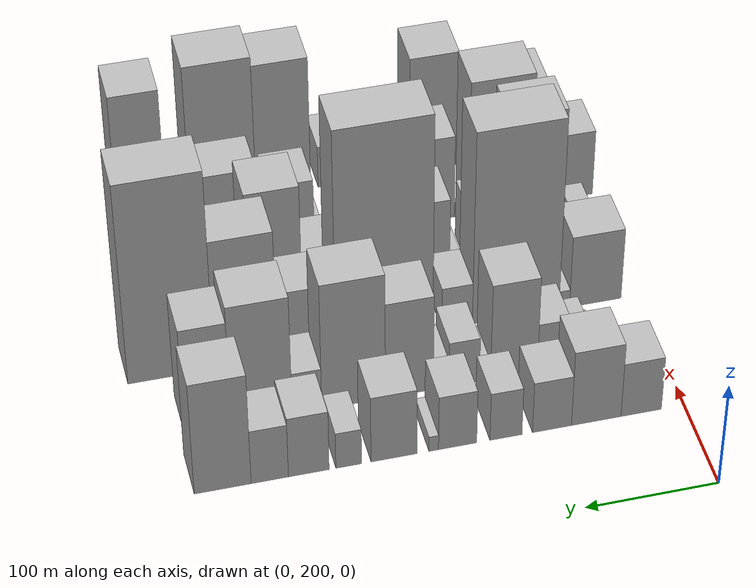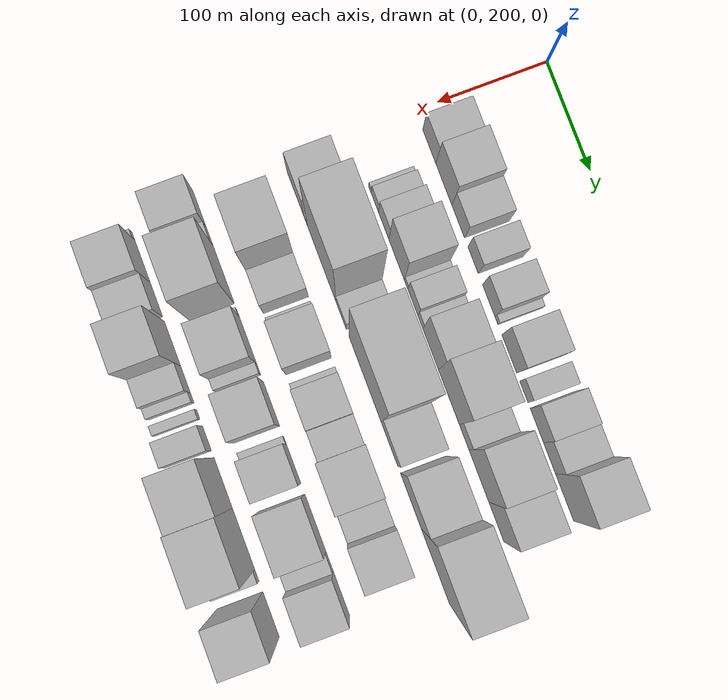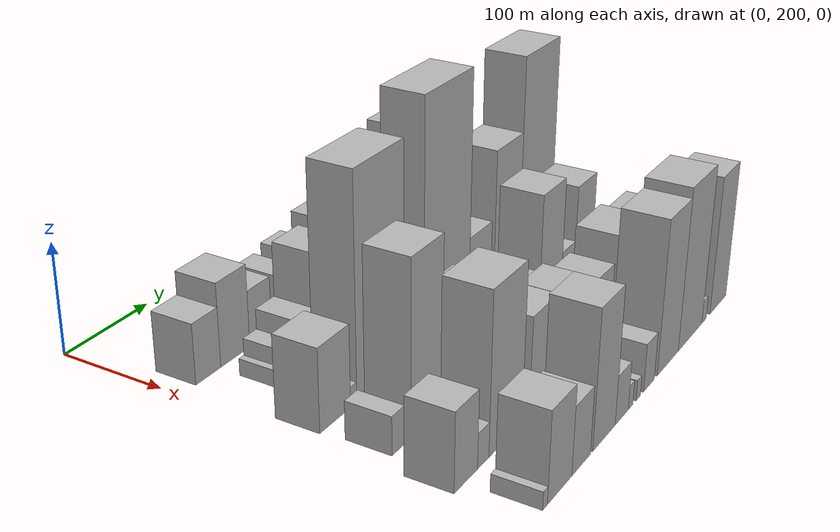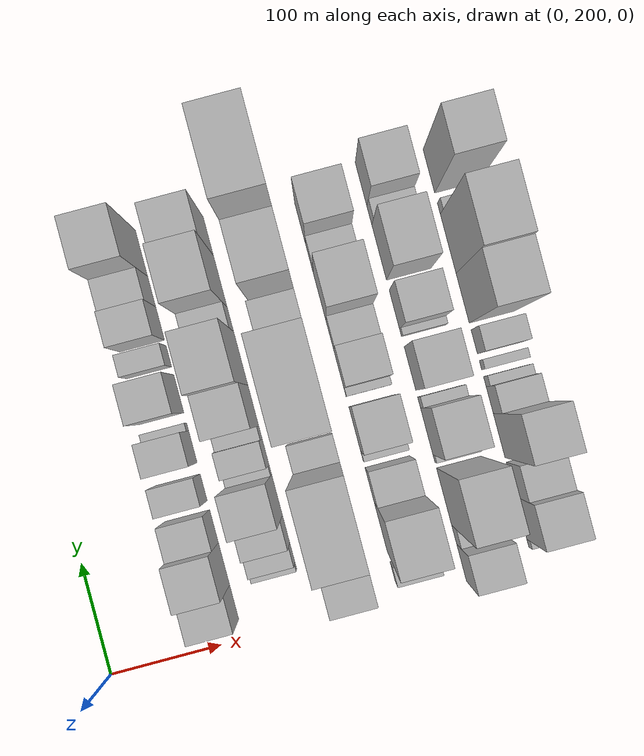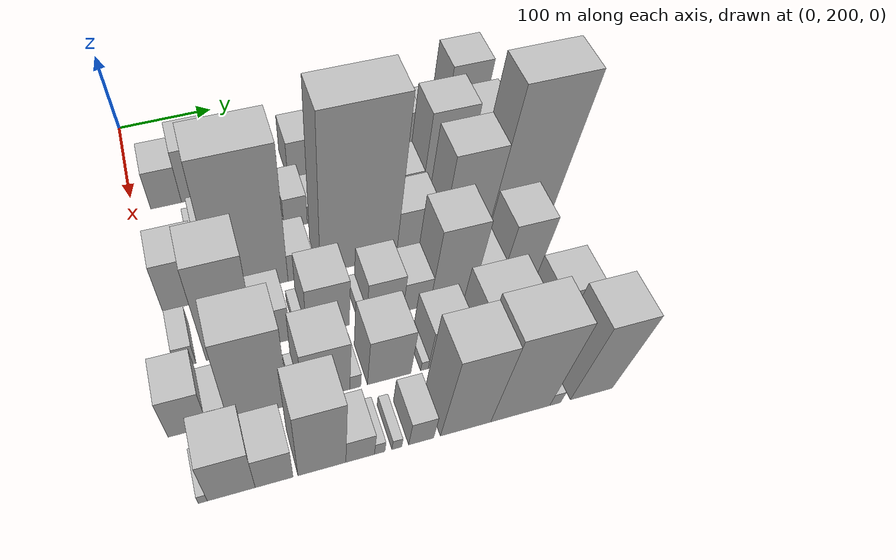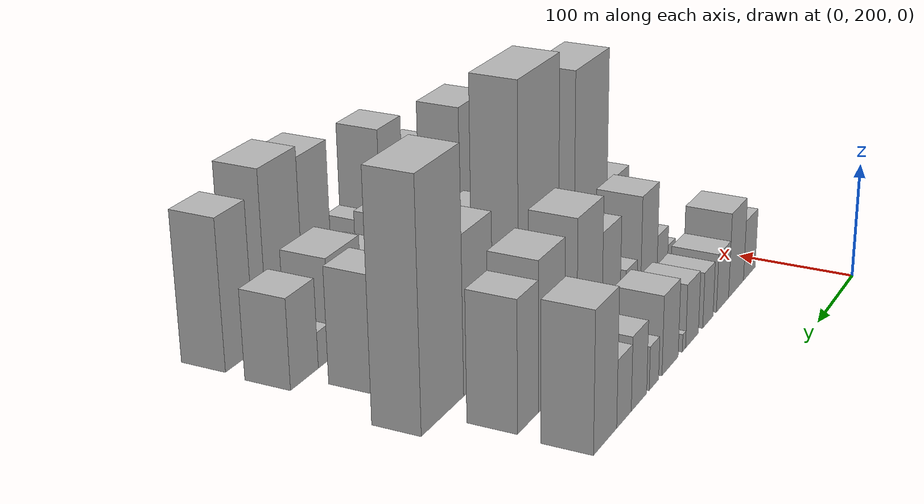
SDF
<sdf version="1.6">
 <world name="default">
  <model name="building_34">
   <static>1</static>
   <pose>100.0000 233.3435 0 0.000000 0.000000 0.000000</pose>
   <link name="link">
    <pose>0 0 27.00 0 0 0</pose>
    <collision name="collision"><geometry><box><size>40.0000 31.0920 54.0000</size></box></geometry></collision>
    <visual name="visual">
     <cast_shadows>0</cast_shadows>
     <geometry><box><size>40.0000 31.0920 54.0000</size></box></geometry>
     <material>
      <script>
       <uri>model://HANNAS_wall/materials/scripts</uri>
       <uri>model://HANNAS_wall/materials/textures</uri>
       <name>vrc/HANNAS_wall</name>
      </script>
     </material>
    </visual>
   </link>
  </model>
  <model name="building_35">
   <static>1</static>
   <pose>100.0000 267.8716 0 0.000000 0.000000 0.000000</pose>
   <link name="link">
    <pose>0 0 37.50 0 0 0</pose>
    <collision name="collision"><geometry><box><size>40.0000 37.9643 75.0000</size></box></geometry></collision>
    <visual name="visual">
     <cast_shadows>0</cast_shadows>
     <geometry><box><size>40.0000 37.9643 75.0000</size></box></geometry>
     <material>
      <script>
       <uri>model://HANNAS_wall/materials/scripts</uri>
       <uri>model://HANNAS_wall/materials/textures</uri>
       <name>vrc/HANNAS_wall</name>
      </script>
     </material>
    </visual>
   </link>
  </model>
  <model name="building_36">
   <static>1</static>
   <pose>100.0000 301.6998 0 0.000000 0.000000 0.000000</pose>
   <link name="link">
    <pose>0 0 25.50 0 0 0</pose>
    <collision name="collision"><geometry><box><size>40.0000 29.6921 51.0000</size></box></geometry></collision>
    <visual name="visual">
     <cast_shadows>0</cast_shadows>
     <geometry><box><size>40.0000 29.6921 51.0000</size></box></geometry>
     <material>
      <script>
       <uri>model://HANNAS_wall/materials/scripts</uri>
       <uri>model://HANNAS_wall/materials/textures</uri>
       <name>vrc/HANNAS_wall</name>
      </script>
     </material>
    </visual>
   </link>
  </model>
  <model name="building_37">
   <static>1</static>
   <pose>100.0000 336.6828 0 0.000000 0.000000 0.000000</pose>
   <link name="link">
    <pose>0 0 24.00 0 0 0</pose>
    <collision name="collision"><geometry><box><size>40.0000 24.2740 48.0000</size></box></geometry></collision>
    <visual name="visual">
     <cast_shadows>0</cast_shadows>
     <geometry><box><size>40.0000 24.2740 48.0000</size></box></geometry>
     <material>
      <script>
       <uri>model://HANNAS_wall/materials/scripts</uri>
       <uri>model://HANNAS_wall/materials/textures</uri>
       <name>vrc/HANNAS_wall</name>
      </script>
     </material>
    </visual>
   </link>
  </model>
  <model name="building_38">
   <static>1</static>
   <pose>100.0000 373.2218 0 0.000000 0.000000 0.000000</pose>
   <link name="link">
    <pose>0 0 27.00 0 0 0</pose>
    <collision name="collision"><geometry><box><size>40.0000 28.8039 54.0000</size></box></geometry></collision>
    <visual name="visual">
     <cast_shadows>0</cast_shadows>
     <geometry><box><size>40.0000 28.8039 54.0000</size></box></geometry>
     <material>
      <script>
       <uri>model://HANNAS_wall/materials/scripts</uri>
       <uri>model://HANNAS_wall/materials/textures</uri>
       <name>vrc/HANNAS_wall</name>
      </script>
     </material>
    </visual>
   </link>
  </model>
  <model name="building_39">
   <static>1</static>
   <pose>100.0000 391.2002 0 0.000000 0.000000 0.000000</pose>
   <link name="link">
    <pose>0 0 7.50 0 0 0</pose>
    <collision name="collision"><geometry><box><size>40.0000 7.1529 15.0000</size></box></geometry></collision>
    <visual name="visual">
     <cast_shadows>0</cast_shadows>
     <geometry><box><size>40.0000 7.1529 15.0000</size></box></geometry>
     <material>
      <script>
       <uri>model://HANNAS_wall/materials/scripts</uri>
       <uri>model://HANNAS_wall/materials/textures</uri>
       <name>vrc/HANNAS_wall</name>
      </script>
     </material>
    </visual>
   </link>
  </model>
  <model name="building_40">
   <static>1</static>
   <pose>100.0000 420.9449 0 0.000000 0.000000 0.000000</pose>
   <link name="link">
    <pose>0 0 33.00 0 0 0</pose>
    <collision name="collision"><geometry><box><size>40.0000 34.3366 66.0000</size></box></geometry></collision>
    <visual name="visual">
     <cast_shadows>0</cast_shadows>
     <geometry><box><size>40.0000 34.3366 66.0000</size></box></geometry>
     <material>
      <script>
       <uri>model://HANNAS_wall/materials/scripts</uri>
       <uri>model://HANNAS_wall/materials/textures</uri>
       <name>vrc/HANNAS_wall</name>
      </script>
     </material>
    </visual>
   </link>
  </model>
  <model name="building_41">
   <static>1</static>
   <pose>100.0000 454.6566 0 0.000000 0.000000 0.000000</pose>
   <link name="link">
    <pose>0 0 18.00 0 0 0</pose>
    <collision name="collision"><geometry><box><size>40.0000 19.0866 36.0000</size></box></geometry></collision>
    <visual name="visual">
     <cast_shadows>0</cast_shadows>
     <geometry><box><size>40.0000 19.0866 36.0000</size></box></geometry>
     <material>
      <script>
       <uri>model://HANNAS_wall/materials/scripts</uri>
       <uri>model://HANNAS_wall/materials/textures</uri>
       <name>vrc/HANNAS_wall</name>
      </script>
     </material>
    </visual>
   </link>
  </model>
  <model name="building_42">
   <static>1</static>
   <pose>100.0000 484.2543 0 0.000000 0.000000 0.000000</pose>
   <link name="link">
    <pose>0 0 30.00 0 0 0</pose>
    <collision name="collision"><geometry><box><size>40.0000 30.1088 60.0000</size></box></geometry></collision>
    <visual name="visual">
     <cast_shadows>0</cast_shadows>
     <geometry><box><size>40.0000 30.1088 60.0000</size></box></geometry>
     <material>
      <script>
       <uri>model://HANNAS_wall/materials/scripts</uri>
       <uri>model://HANNAS_wall/materials/textures</uri>
       <name>vrc/HANNAS_wall</name>
      </script>
     </material>
    </visual>
   </link>
  </model>
  <model name="building_43">
   <static>1</static>
   <pose>100.0000 513.0404 0 0.000000 0.000000 0.000000</pose>
   <link name="link">
    <pose>0 0 27.00 0 0 0</pose>
    <collision name="collision"><geometry><box><size>40.0000 27.4634 54.0000</size></box></geometry></collision>
    <visual name="visual">
     <cast_shadows>0</cast_shadows>
     <geometry><box><size>40.0000 27.4634 54.0000</size></box></geometry>
     <material>
      <script>
       <uri>model://HANNAS_wall/materials/scripts</uri>
       <uri>model://HANNAS_wall/materials/textures</uri>
       <name>vrc/HANNAS_wall</name>
      </script>
     </material>
    </visual>
   </link>
  </model>
  <model name="building_44">
   <static>1</static>
   <pose>100.0000 547.6050 0 0.000000 0.000000 0.000000</pose>
   <link name="link">
    <pose>0 0 55.50 0 0 0</pose>
    <collision name="collision"><geometry><box><size>40.0000 41.6658 111.0000</size></box></geometry></collision>
    <visual name="visual">
     <cast_shadows>0</cast_shadows>
     <geometry><box><size>40.0000 41.6658 111.0000</size></box></geometry>
     <material>
      <script>
       <uri>model://HANNAS_wall/materials/scripts</uri>
       <uri>model://HANNAS_wall/materials/textures</uri>
       <name>vrc/HANNAS_wall</name>
      </script>
     </material>
    </visual>
   </link>
  </model>
  <model name="building_88">
   <static>1</static>
   <pose>160.0000 250.4809 0 0.000000 0.000000 0.000000</pose>
   <link name="link">
    <pose>0 0 7.50 0 0 0</pose>
    <collision name="collision"><geometry><box><size>40.0000 6.4826 15.0000</size></box></geometry></collision>
    <visual name="visual">
     <cast_shadows>0</cast_shadows>
     <geometry><box><size>40.0000 6.4826 15.0000</size></box></geometry>
     <material>
      <script>
       <uri>model://HANNAS_wall/materials/scripts</uri>
       <uri>model://HANNAS_wall/materials/textures</uri>
       <name>vrc/HANNAS_wall</name>
      </script>
     </material>
    </visual>
   </link>
  </model>
  <model name="building_89">
   <static>1</static>
   <pose>160.0000 262.4297 0 0.000000 0.000000 0.000000</pose>
   <link name="link">
    <pose>0 0 15.00 0 0 0</pose>
    <collision name="collision"><geometry><box><size>40.0000 17.4149 30.0000</size></box></geometry></collision>
    <visual name="visual">
     <cast_shadows>0</cast_shadows>
     <geometry><box><size>40.0000 17.4149 30.0000</size></box></geometry>
     <material>
      <script>
       <uri>model://HANNAS_wall/materials/scripts</uri>
       <uri>model://HANNAS_wall/materials/textures</uri>
       <name>vrc/HANNAS_wall</name>
      </script>
     </material>
    </visual>
   </link>
  </model>
  <model name="building_90">
   <static>1</static>
   <pose>160.0000 283.4518 0 0.000000 0.000000 0.000000</pose>
   <link name="link">
    <pose>0 0 24.00 0 0 0</pose>
    <collision name="collision"><geometry><box><size>40.0000 24.6294 48.0000</size></box></geometry></collision>
    <visual name="visual">
     <cast_shadows>0</cast_shadows>
     <geometry><box><size>40.0000 24.6294 48.0000</size></box></geometry>
     <material>
      <script>
       <uri>model://HANNAS_wall/materials/scripts</uri>
       <uri>model://HANNAS_wall/materials/textures</uri>
       <name>vrc/HANNAS_wall</name>
      </script>
     </material>
    </visual>
   </link>
  </model>
  <model name="building_91">
   <static>1</static>
   <pose>160.0000 313.9219 0 0.000000 0.000000 0.000000</pose>
   <link name="link">
    <pose>0 0 48.00 0 0 0</pose>
    <collision name="collision"><geometry><box><size>40.0000 36.3106 96.0000</size></box></geometry></collision>
    <visual name="visual">
     <cast_shadows>0</cast_shadows>
     <geometry><box><size>40.0000 36.3106 96.0000</size></box></geometry>
     <material>
      <script>
       <uri>model://HANNAS_wall/materials/scripts</uri>
       <uri>model://HANNAS_wall/materials/textures</uri>
       <name>vrc/HANNAS_wall</name>
      </script>
     </material>
    </visual>
   </link>
  </model>
  <model name="building_92">
   <static>1</static>
   <pose>160.0000 336.3465 0 0.000000 0.000000 0.000000</pose>
   <link name="link">
    <pose>0 0 9.00 0 0 0</pose>
    <collision name="collision"><geometry><box><size>40.0000 8.5387 18.0000</size></box></geometry></collision>
    <visual name="visual">
     <cast_shadows>0</cast_shadows>
     <geometry><box><size>40.0000 8.5387 18.0000</size></box></geometry>
     <material>
      <script>
       <uri>model://HANNAS_wall/materials/scripts</uri>
       <uri>model://HANNAS_wall/materials/textures</uri>
       <name>vrc/HANNAS_wall</name>
      </script>
     </material>
    </visual>
   </link>
  </model>
  <model name="building_93">
   <static>1</static>
   <pose>160.0000 352.3529 0 0.000000 0.000000 0.000000</pose>
   <link name="link">
    <pose>0 0 22.50 0 0 0</pose>
    <collision name="collision"><geometry><box><size>40.0000 23.4741 45.0000</size></box></geometry></collision>
    <visual name="visual">
     <cast_shadows>0</cast_shadows>
     <geometry><box><size>40.0000 23.4741 45.0000</size></box></geometry>
     <material>
      <script>
       <uri>model://HANNAS_wall/materials/scripts</uri>
       <uri>model://HANNAS_wall/materials/textures</uri>
       <name>vrc/HANNAS_wall</name>
      </script>
     </material>
    </visual>
   </link>
  </model>
  <model name="building_94">
   <static>1</static>
   <pose>160.0000 370.0715 0 0.000000 0.000000 0.000000</pose>
   <link name="link">
    <pose>0 0 13.50 0 0 0</pose>
    <collision name="collision"><geometry><box><size>40.0000 11.9632 27.0000</size></box></geometry></collision>
    <visual name="visual">
     <cast_shadows>0</cast_shadows>
     <geometry><box><size>40.0000 11.9632 27.0000</size></box></geometry>
     <material>
      <script>
       <uri>model://HANNAS_wall/materials/scripts</uri>
       <uri>model://HANNAS_wall/materials/textures</uri>
       <name>vrc/HANNAS_wall</name>
      </script>
     </material>
    </visual>
   </link>
  </model>
  <model name="building_95">
   <static>1</static>
   <pose>160.0000 394.3892 0 0.000000 0.000000 0.000000</pose>
   <link name="link">
    <pose>0 0 48.00 0 0 0</pose>
    <collision name="collision"><geometry><box><size>40.0000 36.6722 96.0000</size></box></geometry></collision>
    <visual name="visual">
     <cast_shadows>0</cast_shadows>
     <geometry><box><size>40.0000 36.6722 96.0000</size></box></geometry>
     <material>
      <script>
       <uri>model://HANNAS_wall/materials/scripts</uri>
       <uri>model://HANNAS_wall/materials/textures</uri>
       <name>vrc/HANNAS_wall</name>
      </script>
     </material>
    </visual>
   </link>
  </model>
  <model name="building_96">
   <static>1</static>
   <pose>160.0000 436.8948 0 0.000000 0.000000 0.000000</pose>
   <link name="link">
    <pose>0 0 63.00 0 0 0</pose>
    <collision name="collision"><geometry><box><size>40.0000 48.3390 126.0000</size></box></geometry></collision>
    <visual name="visual">
     <cast_shadows>0</cast_shadows>
     <geometry><box><size>40.0000 48.3390 126.0000</size></box></geometry>
     <material>
      <script>
       <uri>model://HANNAS_wall/materials/scripts</uri>
       <uri>model://HANNAS_wall/materials/textures</uri>
       <name>vrc/HANNAS_wall</name>
      </script>
     </material>
    </visual>
   </link>
  </model>
  <model name="building_97">
   <static>1</static>
   <pose>160.0000 472.2041 0 0.000000 0.000000 0.000000</pose>
   <link name="link">
    <pose>0 0 21.00 0 0 0</pose>
    <collision name="collision"><geometry><box><size>40.0000 22.2796 42.0000</size></box></geometry></collision>
    <visual name="visual">
     <cast_shadows>0</cast_shadows>
     <geometry><box><size>40.0000 22.2796 42.0000</size></box></geometry>
     <material>
      <script>
       <uri>model://HANNAS_wall/materials/scripts</uri>
       <uri>model://HANNAS_wall/materials/textures</uri>
       <name>vrc/HANNAS_wall</name>
      </script>
     </material>
    </visual>
   </link>
  </model>
  <model name="building_98">
   <static>1</static>
   <pose>160.0000 506.3580 0 0.000000 0.000000 0.000000</pose>
   <link name="link">
    <pose>0 0 60.00 0 0 0</pose>
    <collision name="collision"><geometry><box><size>40.0000 46.0283 120.0000</size></box></geometry></collision>
    <visual name="visual">
     <cast_shadows>0</cast_shadows>
     <geometry><box><size>40.0000 46.0283 120.0000</size></box></geometry>
     <material>
      <script>
       <uri>model://HANNAS_wall/materials/scripts</uri>
       <uri>model://HANNAS_wall/materials/textures</uri>
       <name>vrc/HANNAS_wall</name>
      </script>
     </material>
    </visual>
   </link>
  </model>
  <model name="building_99">
   <static>1</static>
   <pose>160.0000 546.7487 0 0.000000 0.000000 0.000000</pose>
   <link name="link">
    <pose>0 0 52.50 0 0 0</pose>
    <collision name="collision"><geometry><box><size>40.0000 34.7532 105.0000</size></box></geometry></collision>
    <visual name="visual">
     <cast_shadows>0</cast_shadows>
     <geometry><box><size>40.0000 34.7532 105.0000</size></box></geometry>
     <material>
      <script>
       <uri>model://HANNAS_wall/materials/scripts</uri>
       <uri>model://HANNAS_wall/materials/textures</uri>
       <name>vrc/HANNAS_wall</name>
      </script>
     </material>
    </visual>
   </link>
  </model>
  <model name="building_144">
   <static>1</static>
   <pose>220.0000 232.6195 0 0.000000 0.000000 0.000000</pose>
   <link name="link">
    <pose>0 0 36.00 0 0 0</pose>
    <collision name="collision"><geometry><box><size>40.0000 40.9905 72.0000</size></box></geometry></collision>
    <visual name="visual">
     <cast_shadows>0</cast_shadows>
     <geometry><box><size>40.0000 40.9905 72.0000</size></box></geometry>
     <material>
      <script>
       <uri>model://HANNAS_wall/materials/scripts</uri>
       <uri>model://HANNAS_wall/materials/textures</uri>
       <name>vrc/HANNAS_wall</name>
      </script>
     </material>
    </visual>
   </link>
  </model>
  <model name="building_145">
   <static>1</static>
   <pose>220.0000 257.3440 0 0.000000 0.000000 0.000000</pose>
   <link name="link">
    <pose>0 0 9.00 0 0 0</pose>
    <collision name="collision"><geometry><box><size>40.0000 8.4587 18.0000</size></box></geometry></collision>
    <visual name="visual">
     <cast_shadows>0</cast_shadows>
     <geometry><box><size>40.0000 8.4587 18.0000</size></box></geometry>
     <material>
      <script>
       <uri>model://HANNAS_wall/materials/scripts</uri>
       <uri>model://HANNAS_wall/materials/textures</uri>
       <name>vrc/HANNAS_wall</name>
      </script>
     </material>
    </visual>
   </link>
  </model>
  <model name="building_146">
   <static>1</static>
   <pose>220.0000 295.8050 0 0.000000 0.000000 0.000000</pose>
   <link name="link">
    <pose>0 0 96.00 0 0 0</pose>
    <collision name="collision"><geometry><box><size>40.0000 68.4633 192.0000</size></box></geometry></collision>
    <visual name="visual">
     <cast_shadows>0</cast_shadows>
     <geometry><box><size>40.0000 68.4633 192.0000</size></box></geometry>
     <material>
      <script>
       <uri>model://HANNAS_wall/materials/scripts</uri>
       <uri>model://HANNAS_wall/materials/textures</uri>
       <name>vrc/HANNAS_wall</name>
      </script>
     </material>
    </visual>
   </link>
  </model>
  <model name="building_147">
   <static>1</static>
   <pose>220.0000 342.0841 0 0.000000 0.000000 0.000000</pose>
   <link name="link">
    <pose>0 0 21.00 0 0 0</pose>
    <collision name="collision"><geometry><box><size>40.0000 24.0949 42.0000</size></box></geometry></collision>
    <visual name="visual">
     <cast_shadows>0</cast_shadows>
     <geometry><box><size>40.0000 24.0949 42.0000</size></box></geometry>
     <material>
      <script>
       <uri>model://HANNAS_wall/materials/scripts</uri>
       <uri>model://HANNAS_wall/materials/textures</uri>
       <name>vrc/HANNAS_wall</name>
      </script>
     </material>
    </visual>
   </link>
  </model>
  <model name="building_148">
   <static>1</static>
   <pose>220.0000 398.9169 0 0.000000 0.000000 0.000000</pose>
   <link name="link">
    <pose>0 0 108.00 0 0 0</pose>
    <collision name="collision"><geometry><box><size>40.0000 75.5707 216.0000</size></box></geometry></collision>
    <visual name="visual">
     <cast_shadows>0</cast_shadows>
     <geometry><box><size>40.0000 75.5707 216.0000</size></box></geometry>
     <material>
      <script>
       <uri>model://HANNAS_wall/materials/scripts</uri>
       <uri>model://HANNAS_wall/materials/textures</uri>
       <name>vrc/HANNAS_wall</name>
      </script>
     </material>
    </visual>
   </link>
  </model>
  <model name="building_149">
   <static>1</static>
   <pose>220.0000 456.1382 0 0.000000 0.000000 0.000000</pose>
   <link name="link">
    <pose>0 0 33.00 0 0 0</pose>
    <collision name="collision"><geometry><box><size>40.0000 38.8720 66.0000</size></box></geometry></collision>
    <visual name="visual">
     <cast_shadows>0</cast_shadows>
     <geometry><box><size>40.0000 38.8720 66.0000</size></box></geometry>
     <material>
      <script>
       <uri>model://HANNAS_wall/materials/scripts</uri>
       <uri>model://HANNAS_wall/materials/textures</uri>
       <name>vrc/HANNAS_wall</name>
      </script>
     </material>
    </visual>
   </link>
  </model>
  <model name="building_150">
   <static>1</static>
   <pose>220.0000 505.7528 0 0.000000 0.000000 0.000000</pose>
   <link name="link">
    <pose>0 0 64.50 0 0 0</pose>
    <collision name="collision"><geometry><box><size>40.0000 48.3572 129.0000</size></box></geometry></collision>
    <visual name="visual">
     <cast_shadows>0</cast_shadows>
     <geometry><box><size>40.0000 48.3572 129.0000</size></box></geometry>
     <material>
      <script>
       <uri>model://HANNAS_wall/materials/scripts</uri>
       <uri>model://HANNAS_wall/materials/textures</uri>
       <name>vrc/HANNAS_wall</name>
      </script>
     </material>
    </visual>
   </link>
  </model>
  <model name="building_151">
   <static>1</static>
   <pose>220.0000 562.6650 0 0.000000 0.000000 0.000000</pose>
   <link name="link">
    <pose>0 0 99.00 0 0 0</pose>
    <collision name="collision"><geometry><box><size>40.0000 65.4670 198.0000</size></box></geometry></collision>
    <visual name="visual">
     <cast_shadows>0</cast_shadows>
     <geometry><box><size>40.0000 65.4670 198.0000</size></box></geometry>
     <material>
      <script>
       <uri>model://HANNAS_wall/materials/scripts</uri>
       <uri>model://HANNAS_wall/materials/textures</uri>
       <name>vrc/HANNAS_wall</name>
      </script>
     </material>
    </visual>
   </link>
  </model>
  <model name="building_191">
   <static>1</static>
   <pose>280.0000 224.1270 0 0.000000 0.000000 0.000000</pose>
   <link name="link">
    <pose>0 0 16.50 0 0 0</pose>
    <collision name="collision"><geometry><box><size>40.0000 17.2983 33.0000</size></box></geometry></collision>
    <visual name="visual">
     <cast_shadows>0</cast_shadows>
     <geometry><box><size>40.0000 17.2983 33.0000</size></box></geometry>
     <material>
      <script>
       <uri>model://HANNAS_wall/materials/scripts</uri>
       <uri>model://HANNAS_wall/materials/textures</uri>
       <name>vrc/HANNAS_wall</name>
      </script>
     </material>
    </visual>
   </link>
  </model>
  <model name="building_192">
   <static>1</static>
   <pose>280.0000 264.3572 0 0.000000 0.000000 0.000000</pose>
   <link name="link">
    <pose>0 0 73.50 0 0 0</pose>
    <collision name="collision"><geometry><box><size>40.0000 45.1621 147.0000</size></box></geometry></collision>
    <visual name="visual">
     <cast_shadows>0</cast_shadows>
     <geometry><box><size>40.0000 45.1621 147.0000</size></box></geometry>
     <material>
      <script>
       <uri>model://HANNAS_wall/materials/scripts</uri>
       <uri>model://HANNAS_wall/materials/textures</uri>
       <name>vrc/HANNAS_wall</name>
      </script>
     </material>
    </visual>
   </link>
  </model>
  <model name="building_193">
   <static>1</static>
   <pose>280.0000 302.1393 0 0.000000 0.000000 0.000000</pose>
   <link name="link">
    <pose>0 0 28.50 0 0 0</pose>
    <collision name="collision"><geometry><box><size>40.0000 30.4020 57.0000</size></box></geometry></collision>
    <visual name="visual">
     <cast_shadows>0</cast_shadows>
     <geometry><box><size>40.0000 30.4020 57.0000</size></box></geometry>
     <material>
      <script>
       <uri>model://HANNAS_wall/materials/scripts</uri>
       <uri>model://HANNAS_wall/materials/textures</uri>
       <name>vrc/HANNAS_wall</name>
      </script>
     </material>
    </visual>
   </link>
  </model>
  <model name="building_194">
   <static>1</static>
   <pose>280.0000 327.8204 0 0.000000 0.000000 0.000000</pose>
   <link name="link">
    <pose>0 0 9.00 0 0 0</pose>
    <collision name="collision"><geometry><box><size>40.0000 8.9601 18.0000</size></box></geometry></collision>
    <visual name="visual">
     <cast_shadows>0</cast_shadows>
     <geometry><box><size>40.0000 8.9601 18.0000</size></box></geometry>
     <material>
      <script>
       <uri>model://HANNAS_wall/materials/scripts</uri>
       <uri>model://HANNAS_wall/materials/textures</uri>
       <name>vrc/HANNAS_wall</name>
      </script>
     </material>
    </visual>
   </link>
  </model>
  <model name="building_195">
   <static>1</static>
   <pose>280.0000 352.2066 0 0.000000 0.000000 0.000000</pose>
   <link name="link">
    <pose>0 0 37.50 0 0 0</pose>
    <collision name="collision"><geometry><box><size>40.0000 39.8122 75.0000</size></box></geometry></collision>
    <visual name="visual">
     <cast_shadows>0</cast_shadows>
     <geometry><box><size>40.0000 39.8122 75.0000</size></box></geometry>
     <material>
      <script>
       <uri>model://HANNAS_wall/materials/scripts</uri>
       <uri>model://HANNAS_wall/materials/textures</uri>
       <name>vrc/HANNAS_wall</name>
      </script>
     </material>
    </visual>
   </link>
  </model>
  <model name="building_196">
   <static>1</static>
   <pose>280.0000 384.8519 0 0.000000 0.000000 0.000000</pose>
   <link name="link">
    <pose>0 0 9.00 0 0 0</pose>
    <collision name="collision"><geometry><box><size>40.0000 7.4784 18.0000</size></box></geometry></collision>
    <visual name="visual">
     <cast_shadows>0</cast_shadows>
     <geometry><box><size>40.0000 7.4784 18.0000</size></box></geometry>
     <material>
      <script>
       <uri>model://HANNAS_wall/materials/scripts</uri>
       <uri>model://HANNAS_wall/materials/textures</uri>
       <name>vrc/HANNAS_wall</name>
      </script>
     </material>
    </visual>
   </link>
  </model>
  <model name="building_197">
   <static>1</static>
   <pose>280.0000 405.8528 0 0.000000 0.000000 0.000000</pose>
   <link name="link">
    <pose>0 0 30.00 0 0 0</pose>
    <collision name="collision"><geometry><box><size>40.0000 34.5233 60.0000</size></box></geometry></collision>
    <visual name="visual">
     <cast_shadows>0</cast_shadows>
     <geometry><box><size>40.0000 34.5233 60.0000</size></box></geometry>
     <material>
      <script>
       <uri>model://HANNAS_wall/materials/scripts</uri>
       <uri>model://HANNAS_wall/materials/textures</uri>
       <name>vrc/HANNAS_wall</name>
      </script>
     </material>
    </visual>
   </link>
  </model>
  <model name="building_198">
   <static>1</static>
   <pose>280.0000 436.2006 0 0.000000 0.000000 0.000000</pose>
   <link name="link">
    <pose>0 0 22.50 0 0 0</pose>
    <collision name="collision"><geometry><box><size>40.0000 26.1723 45.0000</size></box></geometry></collision>
    <visual name="visual">
     <cast_shadows>0</cast_shadows>
     <geometry><box><size>40.0000 26.1723 45.0000</size></box></geometry>
     <material>
      <script>
       <uri>model://HANNAS_wall/materials/scripts</uri>
       <uri>model://HANNAS_wall/materials/textures</uri>
       <name>vrc/HANNAS_wall</name>
      </script>
     </material>
    </visual>
   </link>
  </model>
  <model name="building_199">
   <static>1</static>
   <pose>280.0000 470.3818 0 0.000000 0.000000 0.000000</pose>
   <link name="link">
    <pose>0 0 57.00 0 0 0</pose>
    <collision name="collision"><geometry><box><size>40.0000 42.1901 114.0000</size></box></geometry></collision>
    <visual name="visual">
     <cast_shadows>0</cast_shadows>
     <geometry><box><size>40.0000 42.1901 114.0000</size></box></geometry>
     <material>
      <script>
       <uri>model://HANNAS_wall/materials/scripts</uri>
       <uri>model://HANNAS_wall/materials/textures</uri>
       <name>vrc/HANNAS_wall</name>
      </script>
     </material>
    </visual>
   </link>
  </model>
  <model name="building_200">
   <static>1</static>
   <pose>280.0000 504.4566 0 0.000000 0.000000 0.000000</pose>
   <link name="link">
    <pose>0 0 22.50 0 0 0</pose>
    <collision name="collision"><geometry><box><size>40.0000 25.9596 45.0000</size></box></geometry></collision>
    <visual name="visual">
     <cast_shadows>0</cast_shadows>
     <geometry><box><size>40.0000 25.9596 45.0000</size></box></geometry>
     <material>
      <script>
       <uri>model://HANNAS_wall/materials/scripts</uri>
       <uri>model://HANNAS_wall/materials/textures</uri>
       <name>vrc/HANNAS_wall</name>
      </script>
     </material>
    </visual>
   </link>
  </model>
  <model name="building_201">
   <static>1</static>
   <pose>280.0000 536.1447 0 0.000000 0.000000 0.000000</pose>
   <link name="link">
    <pose>0 0 48.00 0 0 0</pose>
    <collision name="collision"><geometry><box><size>40.0000 37.4166 96.0000</size></box></geometry></collision>
    <visual name="visual">
     <cast_shadows>0</cast_shadows>
     <geometry><box><size>40.0000 37.4166 96.0000</size></box></geometry>
     <material>
      <script>
       <uri>model://HANNAS_wall/materials/scripts</uri>
       <uri>model://HANNAS_wall/materials/textures</uri>
       <name>vrc/HANNAS_wall</name>
      </script>
     </material>
    </visual>
   </link>
  </model>
  <model name="building_246">
   <static>1</static>
   <pose>340.0000 215.7861 0 0.000000 0.000000 0.000000</pose>
   <link name="link">
    <pose>0 0 33.00 0 0 0</pose>
    <collision name="collision"><geometry><box><size>40.0000 33.2933 66.0000</size></box></geometry></collision>
    <visual name="visual">
     <cast_shadows>0</cast_shadows>
     <geometry><box><size>40.0000 33.2933 66.0000</size></box></geometry>
     <material>
      <script>
       <uri>model://HANNAS_wall/materials/scripts</uri>
       <uri>model://HANNAS_wall/materials/textures</uri>
       <name>vrc/HANNAS_wall</name>
      </script>
     </material>
    </visual>
   </link>
  </model>
  <model name="building_247">
   <static>1</static>
   <pose>340.0000 240.8861 0 0.000000 0.000000 0.000000</pose>
   <link name="link">
    <pose>0 0 15.00 0 0 0</pose>
    <collision name="collision"><geometry><box><size>40.0000 16.9068 30.0000</size></box></geometry></collision>
    <visual name="visual">
     <cast_shadows>0</cast_shadows>
     <geometry><box><size>40.0000 16.9068 30.0000</size></box></geometry>
     <material>
      <script>
       <uri>model://HANNAS_wall/materials/scripts</uri>
       <uri>model://HANNAS_wall/materials/textures</uri>
       <name>vrc/HANNAS_wall</name>
      </script>
     </material>
    </visual>
   </link>
  </model>
  <model name="building_248">
   <static>1</static>
   <pose>340.0000 275.1925 0 0.000000 0.000000 0.000000</pose>
   <link name="link">
    <pose>0 0 67.50 0 0 0</pose>
    <collision name="collision"><geometry><box><size>40.0000 51.7060 135.0000</size></box></geometry></collision>
    <visual name="visual">
     <cast_shadows>0</cast_shadows>
     <geometry><box><size>40.0000 51.7060 135.0000</size></box></geometry>
     <material>
      <script>
       <uri>model://HANNAS_wall/materials/scripts</uri>
       <uri>model://HANNAS_wall/materials/textures</uri>
       <name>vrc/HANNAS_wall</name>
      </script>
     </material>
    </visual>
   </link>
  </model>
  <model name="building_249">
   <static>1</static>
   <pose>340.0000 309.5043 0 0.000000 0.000000 0.000000</pose>
   <link name="link">
    <pose>0 0 7.50 0 0 0</pose>
    <collision name="collision"><geometry><box><size>40.0000 6.9175 15.0000</size></box></geometry></collision>
    <visual name="visual">
     <cast_shadows>0</cast_shadows>
     <geometry><box><size>40.0000 6.9175 15.0000</size></box></geometry>
     <material>
      <script>
       <uri>model://HANNAS_wall/materials/scripts</uri>
       <uri>model://HANNAS_wall/materials/textures</uri>
       <name>vrc/HANNAS_wall</name>
      </script>
     </material>
    </visual>
   </link>
  </model>
  <model name="building_250">
   <static>1</static>
   <pose>340.0000 334.0090 0 0.000000 0.000000 0.000000</pose>
   <link name="link">
    <pose>0 0 42.00 0 0 0</pose>
    <collision name="collision"><geometry><box><size>40.0000 42.0918 84.0000</size></box></geometry></collision>
    <visual name="visual">
     <cast_shadows>0</cast_shadows>
     <geometry><box><size>40.0000 42.0918 84.0000</size></box></geometry>
     <material>
      <script>
       <uri>model://HANNAS_wall/materials/scripts</uri>
       <uri>model://HANNAS_wall/materials/textures</uri>
       <name>vrc/HANNAS_wall</name>
      </script>
     </material>
    </visual>
   </link>
  </model>
  <model name="building_251">
   <static>1</static>
   <pose>340.0000 359.9708 0 0.000000 0.000000 0.000000</pose>
   <link name="link">
    <pose>0 0 12.00 0 0 0</pose>
    <collision name="collision"><geometry><box><size>40.0000 9.8317 24.0000</size></box></geometry></collision>
    <visual name="visual">
     <cast_shadows>0</cast_shadows>
     <geometry><box><size>40.0000 9.8317 24.0000</size></box></geometry>
     <material>
      <script>
       <uri>model://HANNAS_wall/materials/scripts</uri>
       <uri>model://HANNAS_wall/materials/textures</uri>
       <name>vrc/HANNAS_wall</name>
      </script>
     </material>
    </visual>
   </link>
  </model>
  <model name="building_252">
   <static>1</static>
   <pose>340.0000 390.5307 0 0.000000 0.000000 0.000000</pose>
   <link name="link">
    <pose>0 0 37.50 0 0 0</pose>
    <collision name="collision"><geometry><box><size>40.0000 39.2882 75.0000</size></box></geometry></collision>
    <visual name="visual">
     <cast_shadows>0</cast_shadows>
     <geometry><box><size>40.0000 39.2882 75.0000</size></box></geometry>
     <material>
      <script>
       <uri>model://HANNAS_wall/materials/scripts</uri>
       <uri>model://HANNAS_wall/materials/textures</uri>
       <name>vrc/HANNAS_wall</name>
      </script>
     </material>
    </visual>
   </link>
  </model>
  <model name="building_253">
   <static>1</static>
   <pose>340.0000 422.6343 0 0.000000 0.000000 0.000000</pose>
   <link name="link">
    <pose>0 0 7.50 0 0 0</pose>
    <collision name="collision"><geometry><box><size>40.0000 6.9189 15.0000</size></box></geometry></collision>
    <visual name="visual">
     <cast_shadows>0</cast_shadows>
     <geometry><box><size>40.0000 6.9189 15.0000</size></box></geometry>
     <material>
      <script>
       <uri>model://HANNAS_wall/materials/scripts</uri>
       <uri>model://HANNAS_wall/materials/textures</uri>
       <name>vrc/HANNAS_wall</name>
      </script>
     </material>
    </visual>
   </link>
  </model>
  <model name="building_254">
   <static>1</static>
   <pose>340.0000 443.5957 0 0.000000 0.000000 0.000000</pose>
   <link name="link">
    <pose>0 0 31.50 0 0 0</pose>
    <collision name="collision"><geometry><box><size>40.0000 35.0039 63.0000</size></box></geometry></collision>
    <visual name="visual">
     <cast_shadows>0</cast_shadows>
     <geometry><box><size>40.0000 35.0039 63.0000</size></box></geometry>
     <material>
      <script>
       <uri>model://HANNAS_wall/materials/scripts</uri>
       <uri>model://HANNAS_wall/materials/textures</uri>
       <name>vrc/HANNAS_wall</name>
      </script>
     </material>
    </visual>
   </link>
  </model>
  <model name="building_255">
   <static>1</static>
   <pose>340.0000 494.8830 0 0.000000 0.000000 0.000000</pose>
   <link name="link">
    <pose>0 0 42.00 0 0 0</pose>
    <collision name="collision"><geometry><box><size>40.0000 49.5707 84.0000</size></box></geometry></collision>
    <visual name="visual">
     <cast_shadows>0</cast_shadows>
     <geometry><box><size>40.0000 49.5707 84.0000</size></box></geometry>
     <material>
      <script>
       <uri>model://HANNAS_wall/materials/scripts</uri>
       <uri>model://HANNAS_wall/materials/textures</uri>
       <name>vrc/HANNAS_wall</name>
      </script>
     </material>
    </visual>
   </link>
  </model>
  <model name="building_256">
   <static>1</static>
   <pose>340.0000 528.1803 0 0.000000 0.000000 0.000000</pose>
   <link name="link">
    <pose>0 0 15.00 0 0 0</pose>
    <collision name="collision"><geometry><box><size>40.0000 17.0240 30.0000</size></box></geometry></collision>
    <visual name="visual">
     <cast_shadows>0</cast_shadows>
     <geometry><box><size>40.0000 17.0240 30.0000</size></box></geometry>
     <material>
      <script>
       <uri>model://HANNAS_wall/materials/scripts</uri>
       <uri>model://HANNAS_wall/materials/textures</uri>
       <name>vrc/HANNAS_wall</name>
      </script>
     </material>
    </visual>
   </link>
  </model>
  <model name="building_257">
   <static>1</static>
   <pose>340.0000 556.2995 0 0.000000 0.000000 0.000000</pose>
   <link name="link">
    <pose>0 0 37.50 0 0 0</pose>
    <collision name="collision"><geometry><box><size>40.0000 39.2144 75.0000</size></box></geometry></collision>
    <visual name="visual">
     <cast_shadows>0</cast_shadows>
     <geometry><box><size>40.0000 39.2144 75.0000</size></box></geometry>
     <material>
      <script>
       <uri>model://HANNAS_wall/materials/scripts</uri>
       <uri>model://HANNAS_wall/materials/textures</uri>
       <name>vrc/HANNAS_wall</name>
      </script>
     </material>
    </visual>
   </link>
  </model>
  <model name="building_301">
   <static>1</static>
   <pose>400.0000 217.4317 0 0.000000 0.000000 0.000000</pose>
   <link name="link">
    <pose>0 0 7.50 0 0 0</pose>
    <collision name="collision"><geometry><box><size>40.0000 7.1828 15.0000</size></box></geometry></collision>
    <visual name="visual">
     <cast_shadows>0</cast_shadows>
     <geometry><box><size>40.0000 7.1828 15.0000</size></box></geometry>
     <material>
      <script>
       <uri>model://HANNAS_wall/materials/scripts</uri>
       <uri>model://HANNAS_wall/materials/textures</uri>
       <name>vrc/HANNAS_wall</name>
      </script>
     </material>
    </visual>
   </link>
  </model>
  <model name="building_302">
   <static>1</static>
   <pose>400.0000 240.2524 0 0.000000 0.000000 0.000000</pose>
   <link name="link">
    <pose>0 0 37.50 0 0 0</pose>
    <collision name="collision"><geometry><box><size>40.0000 38.4585 75.0000</size></box></geometry></collision>
    <visual name="visual">
     <cast_shadows>0</cast_shadows>
     <geometry><box><size>40.0000 38.4585 75.0000</size></box></geometry>
     <material>
      <script>
       <uri>model://HANNAS_wall/materials/scripts</uri>
       <uri>model://HANNAS_wall/materials/textures</uri>
       <name>vrc/HANNAS_wall</name>
      </script>
     </material>
    </visual>
   </link>
  </model>
  <model name="building_303">
   <static>1</static>
   <pose>400.0000 274.9024 0 0.000000 0.000000 0.000000</pose>
   <link name="link">
    <pose>0 0 28.50 0 0 0</pose>
    <collision name="collision"><geometry><box><size>40.0000 30.8414 57.0000</size></box></geometry></collision>
    <visual name="visual">
     <cast_shadows>0</cast_shadows>
     <geometry><box><size>40.0000 30.8414 57.0000</size></box></geometry>
     <material>
      <script>
       <uri>model://HANNAS_wall/materials/scripts</uri>
       <uri>model://HANNAS_wall/materials/textures</uri>
       <name>vrc/HANNAS_wall</name>
      </script>
     </material>
    </visual>
   </link>
  </model>
  <model name="building_304">
   <static>1</static>
   <pose>400.0000 314.2784 0 0.000000 0.000000 0.000000</pose>
   <link name="link">
    <pose>0 0 58.50 0 0 0</pose>
    <collision name="collision"><geometry><box><size>40.0000 39.9106 117.0000</size></box></geometry></collision>
    <visual name="visual">
     <cast_shadows>0</cast_shadows>
     <geometry><box><size>40.0000 39.9106 117.0000</size></box></geometry>
     <material>
      <script>
       <uri>model://HANNAS_wall/materials/scripts</uri>
       <uri>model://HANNAS_wall/materials/textures</uri>
       <name>vrc/HANNAS_wall</name>
      </script>
     </material>
    </visual>
   </link>
  </model>
  <model name="building_305">
   <static>1</static>
   <pose>400.0000 346.3018 0 0.000000 0.000000 0.000000</pose>
   <link name="link">
    <pose>0 0 21.00 0 0 0</pose>
    <collision name="collision"><geometry><box><size>40.0000 24.1360 42.0000</size></box></geometry></collision>
    <visual name="visual">
     <cast_shadows>0</cast_shadows>
     <geometry><box><size>40.0000 24.1360 42.0000</size></box></geometry>
     <material>
      <script>
       <uri>model://HANNAS_wall/materials/scripts</uri>
       <uri>model://HANNAS_wall/materials/textures</uri>
       <name>vrc/HANNAS_wall</name>
      </script>
     </material>
    </visual>
   </link>
  </model>
  <model name="building_306">
   <static>1</static>
   <pose>400.0000 362.8581 0 0.000000 0.000000 0.000000</pose>
   <link name="link">
    <pose>0 0 10.50 0 0 0</pose>
    <collision name="collision"><geometry><box><size>40.0000 8.9766 21.0000</size></box></geometry></collision>
    <visual name="visual">
     <cast_shadows>0</cast_shadows>
     <geometry><box><size>40.0000 8.9766 21.0000</size></box></geometry>
     <material>
      <script>
       <uri>model://HANNAS_wall/materials/scripts</uri>
       <uri>model://HANNAS_wall/materials/textures</uri>
       <name>vrc/HANNAS_wall</name>
      </script>
     </material>
    </visual>
   </link>
  </model>
  <model name="building_307">
   <static>1</static>
   <pose>400.0000 377.5633 0 0.000000 0.000000 0.000000</pose>
   <link name="link">
    <pose>0 0 9.00 0 0 0</pose>
    <collision name="collision"><geometry><box><size>40.0000 8.4338 18.0000</size></box></geometry></collision>
    <visual name="visual">
     <cast_shadows>0</cast_shadows>
     <geometry><box><size>40.0000 8.4338 18.0000</size></box></geometry>
     <material>
      <script>
       <uri>model://HANNAS_wall/materials/scripts</uri>
       <uri>model://HANNAS_wall/materials/textures</uri>
       <name>vrc/HANNAS_wall</name>
      </script>
     </material>
    </visual>
   </link>
  </model>
  <model name="building_308">
   <static>1</static>
   <pose>400.0000 398.6226 0 0.000000 0.000000 0.000000</pose>
   <link name="link">
    <pose>0 0 21.00 0 0 0</pose>
    <collision name="collision"><geometry><box><size>40.0000 21.6849 42.0000</size></box></geometry></collision>
    <visual name="visual">
     <cast_shadows>0</cast_shadows>
     <geometry><box><size>40.0000 21.6849 42.0000</size></box></geometry>
     <material>
      <script>
       <uri>model://HANNAS_wall/materials/scripts</uri>
       <uri>model://HANNAS_wall/materials/textures</uri>
       <name>vrc/HANNAS_wall</name>
      </script>
     </material>
    </visual>
   </link>
  </model>
  <model name="building_309">
   <static>1</static>
   <pose>400.0000 437.7121 0 0.000000 0.000000 0.000000</pose>
   <link name="link">
    <pose>0 0 67.50 0 0 0</pose>
    <collision name="collision"><geometry><box><size>40.0000 44.4940 135.0000</size></box></geometry></collision>
    <visual name="visual">
     <cast_shadows>0</cast_shadows>
     <geometry><box><size>40.0000 44.4940 135.0000</size></box></geometry>
     <material>
      <script>
       <uri>model://HANNAS_wall/materials/scripts</uri>
       <uri>model://HANNAS_wall/materials/textures</uri>
       <name>vrc/HANNAS_wall</name>
      </script>
     </material>
    </visual>
   </link>
  </model>
  <model name="building_310">
   <static>1</static>
   <pose>400.0000 486.7539 0 0.000000 0.000000 0.000000</pose>
   <link name="link">
    <pose>0 0 72.00 0 0 0</pose>
    <collision name="collision"><geometry><box><size>40.0000 53.5895 144.0000</size></box></geometry></collision>
    <visual name="visual">
     <cast_shadows>0</cast_shadows>
     <geometry><box><size>40.0000 53.5895 144.0000</size></box></geometry>
     <material>
      <script>
       <uri>model://HANNAS_wall/materials/scripts</uri>
       <uri>model://HANNAS_wall/materials/textures</uri>
       <name>vrc/HANNAS_wall</name>
      </script>
     </material>
    </visual>
   </link>
  </model>
  <model name="building_311">
   <static>1</static>
   <pose>400.0000 518.5803 0 0.000000 0.000000 0.000000</pose>
   <link name="link">
    <pose>0 0 10.50 0 0 0</pose>
    <collision name="collision"><geometry><box><size>40.0000 10.0634 21.0000</size></box></geometry></collision>
    <visual name="visual">
     <cast_shadows>0</cast_shadows>
     <geometry><box><size>40.0000 10.0634 21.0000</size></box></geometry>
     <material>
      <script>
       <uri>model://HANNAS_wall/materials/scripts</uri>
       <uri>model://HANNAS_wall/materials/textures</uri>
       <name>vrc/HANNAS_wall</name>
      </script>
     </material>
    </visual>
   </link>
  </model>
  <model name="building_312">
   <static>1</static>
   <pose>400.0000 552.2433 0 0.000000 0.000000 0.000000</pose>
   <link name="link">
    <pose>0 0 63.00 0 0 0</pose>
    <collision name="collision"><geometry><box><size>40.0000 39.2626 126.0000</size></box></geometry></collision>
    <visual name="visual">
     <cast_shadows>0</cast_shadows>
     <geometry><box><size>40.0000 39.2626 126.0000</size></box></geometry>
     <material>
      <script>
       <uri>model://HANNAS_wall/materials/scripts</uri>
       <uri>model://HANNAS_wall/materials/textures</uri>
       <name>vrc/HANNAS_wall</name>
      </script>
     </material>
    </visual>
   </link>
  </model>
 </world>
</sdf>
